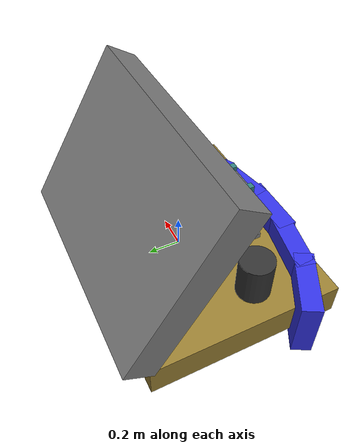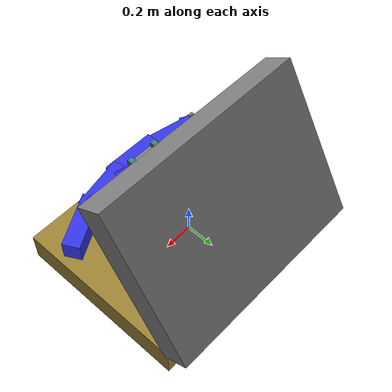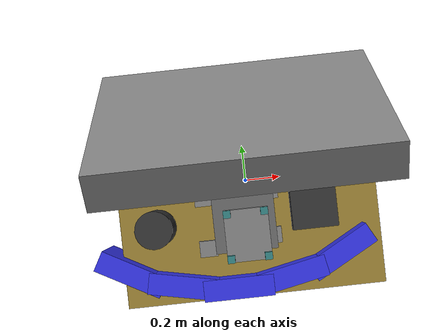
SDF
<sdf version="1.6">
    <model name="car_engine4">
        <allow_auto_disable>true</allow_auto_disable>
        <link name="body">
            <kinematic>true</kinematic>
            <pose>-0.03 -0.20 0.14 0 0 0</pose>
            <visual name="visual">
                <geometry>
                    <box>
                        <size>0.34 0.37 0.30</size>
                    </box>
                </geometry>
                <material>
                    <ambient>0.4 0.4 0.4 1.0</ambient>
                    <diffuse>0.4 0.4 0.4 1.0</diffuse>
                </material>
            </visual>
            <collision name="collision">
                <geometry>
                    <box>
                        <size>0.34 0.37 0.30</size>
                    </box>
                </geometry>
            </collision>
        </link>
        <link name="lift_tab1">
            <kinematic>true</kinematic>
            <pose>0.12 -0.07 0.18 0 0 0</pose>
            <visual name="visual">
                <geometry>
                    <box>
                        <size>0.1 0.09 0.04</size>
                    </box>
                </geometry>
                <material>
                    <ambient>0.5 0.5 0.5 1.0</ambient>
                    <diffuse>0.5 0.5 0.5 1.0</diffuse>
                </material>
            </visual>
            <collision name="collision">
                <geometry>
                    <box>
                        <size>0.1 0.09 0.04</size>
                    </box>
                </geometry>
            </collision>
        </link>
        <link name="lift_tab2">
            <kinematic>true</kinematic>
            <pose>0.12 -0.32 0.18 0 0 0</pose>
            <visual name="visual">
                <geometry>
                    <box>
                        <size>0.1 0.09 0.04</size>
                    </box>
                </geometry>
                <material>
                    <ambient>0.5 0.5 0.5 1.0</ambient>
                    <diffuse>0.5 0.5 0.5 1.0</diffuse>
                </material>
            </visual>
            <collision name="collision">
                <geometry>
                    <box>
                        <size>0.1 0.09 0.04</size>
                    </box>
                </geometry>
            </collision>
        </link>
        <link name="lift_tab3">
            <kinematic>true</kinematic>
            <pose>-0.245 -0.07 0.18 0 0 0</pose>
            <visual name="visual">
                <geometry>
                    <box>
                        <size>0.1 0.1 0.07</size>
                    </box>
                </geometry>
                <material>
                    <ambient>0.5 0.5 0.5 1.0</ambient>
                    <diffuse>0.5 0.5 0.5 1.0</diffuse>
                </material>
            </visual>
            <collision name="collision">
                <geometry>
                    <box>
                        <size>0.1 0.1 0.07</size>
                    </box>
                </geometry>
            </collision>
        </link>
        <link name="lift_tab4">
            <kinematic>true</kinematic>
            <pose>-0.245 -0.36 0.16 0 0 0</pose>
            <visual name="visual">
                <geometry>
                    <box>
                        <size>0.1 0.09 0.035</size>
                    </box>
                </geometry>
                <material>
                    <ambient>0.5 0.5 0.5 1.0</ambient>
                    <diffuse>0.5 0.5 0.5 1.0</diffuse>
                </material>
            </visual>
            <collision name="collision">
                <geometry>
                    <box>
                        <size>0.1 0.09 0.035</size>
                    </box>
                </geometry>
            </collision>
        </link>
        <link name="top">
            <kinematic>true</kinematic>
            <pose>-0.02 -0.29 0.32 0 0 0</pose>
            <visual name="visual">
                <geometry>
                    <box>
                        <size>0.24 0.28 0.13</size>
                    </box>
                </geometry>
                <material>
                    <ambient>0.5 0.5 0.5 1.0</ambient>
                    <diffuse>0.5 0.5 0.5 1.0</diffuse>
                </material>
            </visual>
            <collision name="collision">
                <geometry>
                    <box>
                        <size>0.24 0.28 0.13</size>
                    </box>
                </geometry>
            </collision>
        </link>
        <link name="top_hook1">
            <kinematic>true</kinematic>
            <pose>0.08 -0.17 0.40 0 0 0</pose>
            <visual name="visual">
                <geometry>
                    <box>
                        <size>0.04 0.04 0.04</size>
                    </box>
                </geometry>
                <material>
                    <ambient>0.2 0.5 0.5 1.0</ambient>
                    <diffuse>0.2 0.5 0.5 1.0</diffuse>
                </material>
            </visual>
            <collision name="collision">
                <geometry>
                    <box>
                        <size>0.04 0.04 0.04</size>
                    </box>
                </geometry>
            </collision>
        </link>
        <link name="top_hook2">
            <kinematic>true</kinematic>
            <pose>-0.12 -0.17 0.40 0 0 0</pose>
            <visual name="visual">
                <geometry>
                    <box>
                        <size>0.04 0.04 0.04</size>
                    </box>
                </geometry>
                <material>
                    <ambient>0.2 0.5 0.5 1.0</ambient>
                    <diffuse>0.2 0.5 0.5 1.0</diffuse>
                </material>
            </visual>
            <collision name="collision">
                <geometry>
                    <box>
                        <size>0.04 0.04 0.04</size>
                    </box>
                </geometry>
            </collision>
        </link>
        <link name="top_hook3">
            <kinematic>true</kinematic>
            <pose>-0.12 -0.41 0.40 0 0 0</pose>
            <visual name="visual">
                <geometry>
                    <box>
                        <size>0.04 0.04 0.04</size>
                    </box>
                </geometry>
                <material>
                    <ambient>0.2 0.5 0.5 1.0</ambient>
                    <diffuse>0.2 0.5 0.5 1.0</diffuse>
                </material>
            </visual>
            <collision name="collision">
                <geometry>
                    <box>
                        <size>0.04 0.04 0.04</size>
                    </box>
                </geometry>
            </collision>
        </link>
        <link name="top_hook4">
            <kinematic>true</kinematic>
            <pose>0.08 -0.41 0.40 0 0 0</pose>
            <visual name="visual">
                <geometry>
                    <box>
                        <size>0.04 0.04 0.04</size>
                    </box>
                </geometry>
                <material>
                    <ambient>0.2 0.5 0.5 1.0</ambient>
                    <diffuse>0.2 0.5 0.5 1.0</diffuse>
                </material>
            </visual>
            <collision name="collision">
                <geometry>
                    <box>
                        <size>0.04 0.04 0.04</size>
                    </box>
                </geometry>
            </collision>
        </link>
        <link name="pallet">
            <kinematic>true</kinematic>
            <pose>0 -0.07 -0.08 0 0 0</pose>
            <visual name="visual">
                <geometry>
                    <box>
                        <size>1.50 1.2 0.21</size>
                    </box>
                </geometry>
                <material>
                    <ambient>0.6 0.5 0.2 1.0</ambient>
                    <diffuse>0.6 0.5 0.2 1.0</diffuse>
                </material>
            </visual>
            <collision name="collision">
                <geometry>
                    <box>
                        <size>1.50 1.2 0.21</size>
                    </box>
                </geometry>
            </collision>
        </link>
        <link name="hood">
            <kinematic>true</kinematic>
            <pose>0 0.3 0.5 0.55 0 0</pose>
            <visual name="visual">
                <geometry>
                    <box>
                        <size>1.50 0.2 1.1</size>
                    </box>
                </geometry>
                <material>
                    <ambient>0.5 0.5 0.5 1.0</ambient>
                    <diffuse>0.5 0.5 0.5 1.0</diffuse>
                </material>
            </visual>
            <collision name="collision">
                <geometry>
                    <box>
                        <size>1.50 0.2 1.1</size>
                    </box>
                </geometry>
            </collision>
        </link>
        <link name="cylinder">
            <kinematic>true</kinematic>
            <pose>-0.53 -0.22 0.15 0 0 0</pose>
            <visual name="visual">
                <geometry>
                    <cylinder>
                        <radius>0.105</radius>
                        <length>0.27</length>
                    </cylinder>
                </geometry>
                <material>
                    <ambient>0.2 0.2 0.2 1.0</ambient>
                    <diffuse>0.2 0.2 0.2 1.0</diffuse>
                </material>
            </visual>
            <collision name="collision">
                <geometry>
                    <cylinder>
                        <radius>0.105</radius>
                        <length>0.27</length>
                    </cylinder>
                </geometry>
            </collision>
        </link>
        <link name="box1">
            <kinematic>true</kinematic>
            <pose>-0.13 0.08 0.12 0 0 0</pose>
            <visual name="visual">
                <geometry>
                    <box>
                        <size>0.2 0.23 0.15</size>
                    </box>
                </geometry>
                <material>
                    <ambient>0.5 0.5 0.5 1.0</ambient>
                    <diffuse>0.5 0.5 0.5 1.0</diffuse>
                </material>
            </visual>
            <collision name="collision">
                <geometry>
                    <box>
                        <size>0.2 0.23 0.15</size>
                    </box>
                </geometry>
            </collision>
        </link>
        <link name="box2">
            <kinematic>true</kinematic>
            <pose>0.1 0.18 0.2 0 0 0</pose>
            <visual name="visual">
                <geometry>
                    <box>
                        <size>0.3 0.35 0.32</size>
                    </box>
                </geometry>
                <material>
                    <ambient>0.3 0.3 0.3 1.0</ambient>
                    <diffuse>0.3 0.3 0.3 1.0</diffuse>
                </material>
            </visual>
            <collision name="collision">
                <geometry>
                    <box>
                        <size>0.3 0.35 0.32</size>
                    </box>
                </geometry>
            </collision>
        </link>
        <link name="box3">
            <kinematic>true</kinematic>
            <pose>0.37 -0.05 0.07 0 0 0</pose>
            <visual name="visual">
                <geometry>
                    <box>
                        <size>0.26 0.52 0.14</size>
                    </box>
                </geometry>
                <material>
                    <ambient>0.2 0.2 0.2 1.0</ambient>
                    <diffuse>0.2 0.2 0.2 1.0</diffuse>
                </material>
            </visual>
            <collision name="collision">
                <geometry>
                    <box>
                        <size>0.26 0.52 0.14</size>
                    </box>
                </geometry>
            </collision>
        </link>
        <link name="bumper1">
            <kinematic>true</kinematic>
            <pose>-0.1 -0.60 -0.04 0 0 0</pose>
            <visual name="visual">
                <geometry>
                    <box>
                        <size>0.4 0.12 0.4</size>
                    </box>
                </geometry>
                <material>
                    <ambient>0.2 0.2 0.9 1.0</ambient>
                    <diffuse>0.2 0.2 0.9 1.0</diffuse>
                </material>
            </visual>
            <collision name="collision">
                <geometry>
                    <box>
                        <size>0.4 0.12 0.4</size>
                    </box>
                </geometry>
            </collision>
        </link>
        <link name="bumper2">
            <kinematic>true</kinematic>
            <pose>-0.41 -0.56 -0.04 0 0 -0.2</pose>
            <visual name="visual">
                <geometry>
                    <box>
                        <size>0.4 0.12 0.4</size>
                    </box>
                </geometry>
                <material>
                    <ambient>0.2 0.2 0.9 1.0</ambient>
                    <diffuse>0.2 0.2 0.9 1.0</diffuse>
                </material>
            </visual>
            <collision name="collision">
                <geometry>
                    <box>
                        <size>0.4 0.12 0.4</size>
                    </box>
                </geometry>
            </collision>
        </link>
        <link name="bumper3">
            <kinematic>true</kinematic>
            <pose>-0.7 -0.46 -0.04 0 0 -0.5</pose>
            <visual name="visual">
                <geometry>
                    <box>
                        <size>0.4 0.12 0.4</size>
                    </box>
                </geometry>
                <material>
                    <ambient>0.2 0.2 0.9 1.0</ambient>
                    <diffuse>0.2 0.2 0.9 1.0</diffuse>
                </material>
            </visual>
            <collision name="collision">
                <geometry>
                    <box>
                        <size>0.4 0.12 0.4</size>
                    </box>
                </geometry>
            </collision>
        </link>
        <link name="bumper4">
            <kinematic>true</kinematic>
            <pose>0.21 -0.56 -0.04 0 0 0.2</pose>
            <visual name="visual">
                <geometry>
                    <box>
                        <size>0.4 0.12 0.4</size>
                    </box>
                </geometry>
                <material>
                    <ambient>0.2 0.2 0.9 1.0</ambient>
                    <diffuse>0.2 0.2 0.9 1.0</diffuse>
                </material>
            </visual>
            <collision name="collision">
                <geometry>
                    <box>
                        <size>0.4 0.12 0.4</size>
                    </box>
                </geometry>
            </collision>
        </link>
        <link name="bumper5">
            <kinematic>true</kinematic>
            <pose>0.5 -0.46 -0.04 0 0 0.5</pose>
            <visual name="visual">
                <geometry>
                    <box>
                        <size>0.4 0.12 0.4</size>
                    </box>
                </geometry>
                <material>
                    <ambient>0.2 0.2 0.9 1.0</ambient>
                    <diffuse>0.2 0.2 0.9 1.0</diffuse>
                </material>
            </visual>
            <collision name="collision">
                <geometry>
                    <box>
                        <size>0.4 0.12 0.4</size>
                    </box>
                </geometry>
            </collision>
        </link>
    </model>
</sdf>
